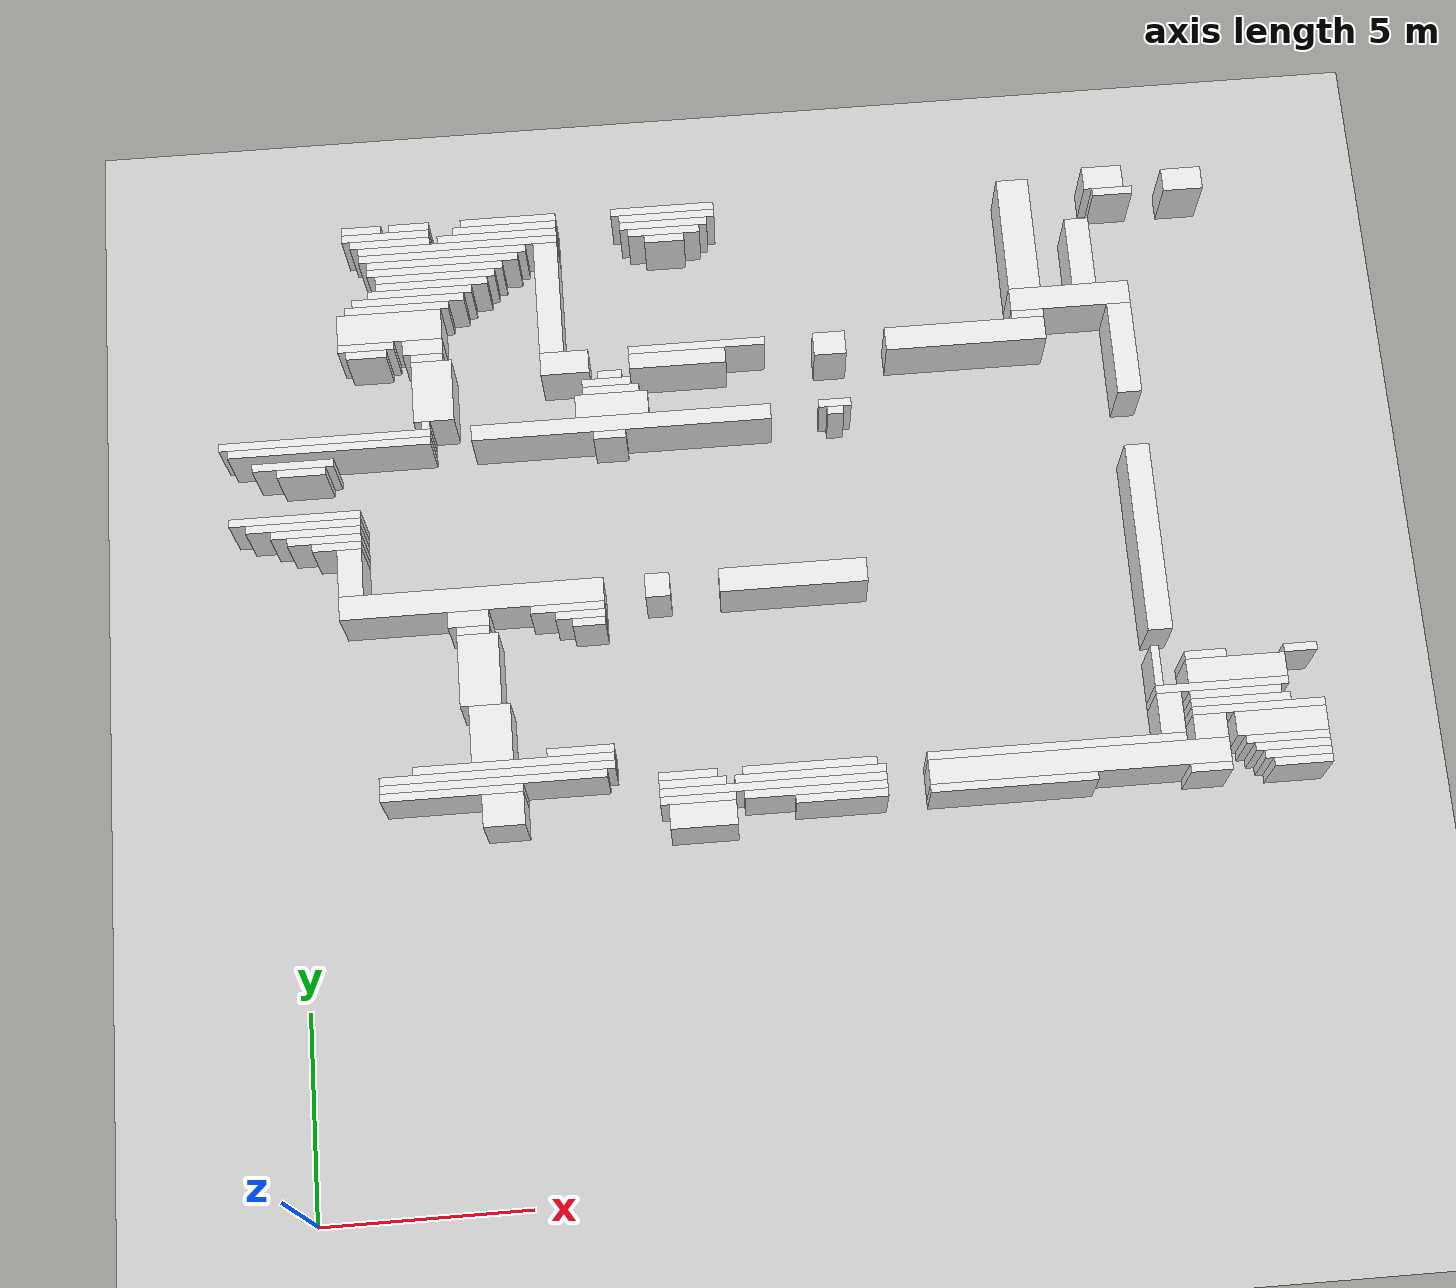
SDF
<sdf version="1.7">
 <world name="default">
  <model name="ground_plane">
   <static>1</static>
   <link name="link">
    <collision name="collision">
     <geometry><plane><normal>0 0 1</normal><size>120 120</size></plane></geometry>
    </collision>
    <visual name="visual">
     <geometry><plane><normal>0 0 1</normal><size>120 120</size></plane></geometry>
     <material>
      <script><uri>file://media/materials/scripts/gazebo.material</uri><name>Gazebo/Grey</name></script>
     </material>
    </visual>
   </link>
  </model>
  <model name="random_complex_02_model">
   <static>1</static>
   <link name="obs_1012">
    <pose>2.1000 24.5000 0.8000 0 0 0</pose>
    <collision name="obs_1012_col"><geometry><box><size>1.0000 0.2000 1.6000</size></box></geometry></collision>
    <visual name="obs_1012_vis">
     <geometry><box><size>1.0000 0.2000 1.6000</size></box></geometry>
     <material>
      <script><uri>file://media/materials/scripts/gazebo.material</uri><name>Gazebo/White</name></script>
     </material>
    </visual>
   </link>
   <link name="obs_1013">
    <pose>3.3000 24.5000 0.8000 0 0 0</pose>
    <collision name="obs_1013_col"><geometry><box><size>1.0000 0.2000 1.6000</size></box></geometry></collision>
    <visual name="obs_1013_vis">
     <geometry><box><size>1.0000 0.2000 1.6000</size></box></geometry>
     <material>
      <script><uri>file://media/materials/scripts/gazebo.material</uri><name>Gazebo/White</name></script>
     </material>
    </visual>
   </link>
   <link name="obs_1014">
    <pose>5.8000 24.5000 0.8000 0 0 0</pose>
    <collision name="obs_1014_col"><geometry><box><size>2.4000 0.2000 1.6000</size></box></geometry></collision>
    <visual name="obs_1014_vis">
     <geometry><box><size>2.4000 0.2000 1.6000</size></box></geometry>
     <material>
      <script><uri>file://media/materials/scripts/gazebo.material</uri><name>Gazebo/White</name></script>
     </material>
    </visual>
   </link>
   <link name="obs_1015">
    <pose>9.7000 24.5000 0.8000 0 0 0</pose>
    <collision name="obs_1015_col"><geometry><box><size>2.6000 0.2000 1.6000</size></box></geometry></collision>
    <visual name="obs_1015_vis">
     <geometry><box><size>2.6000 0.2000 1.6000</size></box></geometry>
     <material>
      <script><uri>file://media/materials/scripts/gazebo.material</uri><name>Gazebo/White</name></script>
     </material>
    </visual>
   </link>
   <link name="obs_1019">
    <pose>20.9000 24.5000 0.8000 0 0 0</pose>
    <collision name="obs_1019_col"><geometry><box><size>1.0000 0.6000 1.6000</size></box></geometry></collision>
    <visual name="obs_1019_vis">
     <geometry><box><size>1.0000 0.6000 1.6000</size></box></geometry>
     <material>
      <script><uri>file://media/materials/scripts/gazebo.material</uri><name>Gazebo/White</name></script>
     </material>
    </visual>
   </link>
   <link name="obs_1024">
    <pose>2.7000 24.3000 0.8000 0 0 0</pose>
    <collision name="obs_1024_col"><geometry><box><size>2.2000 0.2000 1.6000</size></box></geometry></collision>
    <visual name="obs_1024_vis">
     <geometry><box><size>2.2000 0.2000 1.6000</size></box></geometry>
     <material>
      <script><uri>file://media/materials/scripts/gazebo.material</uri><name>Gazebo/White</name></script>
     </material>
    </visual>
   </link>
   <link name="obs_1025">
    <pose>5.7000 24.3000 0.8000 0 0 0</pose>
    <collision name="obs_1025_col"><geometry><box><size>2.6000 0.2000 1.6000</size></box></geometry></collision>
    <visual name="obs_1025_vis">
     <geometry><box><size>2.6000 0.2000 1.6000</size></box></geometry>
     <material>
      <script><uri>file://media/materials/scripts/gazebo.material</uri><name>Gazebo/White</name></script>
     </material>
    </visual>
   </link>
   <link name="obs_1026">
    <pose>9.8000 24.3000 0.8000 0 0 0</pose>
    <collision name="obs_1026_col"><geometry><box><size>2.4000 0.2000 1.6000</size></box></geometry></collision>
    <visual name="obs_1026_vis">
     <geometry><box><size>2.4000 0.2000 1.6000</size></box></geometry>
     <material>
      <script><uri>file://media/materials/scripts/gazebo.material</uri><name>Gazebo/White</name></script>
     </material>
    </visual>
   </link>
   <link name="obs_1032">
    <pose>22.9000 24.3000 0.8000 0 0 0</pose>
    <collision name="obs_1032_col"><geometry><box><size>1.0000 0.6000 1.6000</size></box></geometry></collision>
    <visual name="obs_1032_vis">
     <geometry><box><size>1.0000 0.6000 1.6000</size></box></geometry>
     <material>
      <script><uri>file://media/materials/scripts/gazebo.material</uri><name>Gazebo/White</name></script>
     </material>
    </visual>
   </link>
   <link name="obs_1039">
    <pose>2.8000 24.1000 0.8000 0 0 0</pose>
    <collision name="obs_1039_col"><geometry><box><size>2.0000 0.2000 1.6000</size></box></geometry></collision>
    <visual name="obs_1039_vis">
     <geometry><box><size>2.0000 0.2000 1.6000</size></box></geometry>
     <material>
      <script><uri>file://media/materials/scripts/gazebo.material</uri><name>Gazebo/White</name></script>
     </material>
    </visual>
   </link>
   <link name="obs_1040">
    <pose>5.5000 24.1000 0.8000 0 0 0</pose>
    <collision name="obs_1040_col"><geometry><box><size>3.0000 0.2000 1.6000</size></box></geometry></collision>
    <visual name="obs_1040_vis">
     <geometry><box><size>3.0000 0.2000 1.6000</size></box></geometry>
     <material>
      <script><uri>file://media/materials/scripts/gazebo.material</uri><name>Gazebo/White</name></script>
     </material>
    </visual>
   </link>
   <link name="obs_1041">
    <pose>9.7000 24.1000 0.8000 0 0 0</pose>
    <collision name="obs_1041_col"><geometry><box><size>2.2000 0.2000 1.6000</size></box></geometry></collision>
    <visual name="obs_1041_vis">
     <geometry><box><size>2.2000 0.2000 1.6000</size></box></geometry>
     <material>
      <script><uri>file://media/materials/scripts/gazebo.material</uri><name>Gazebo/White</name></script>
     </material>
    </visual>
   </link>
   <link name="obs_1042">
    <pose>21.1000 24.1000 0.8000 0 0 0</pose>
    <collision name="obs_1042_col"><geometry><box><size>1.0000 0.2000 1.6000</size></box></geometry></collision>
    <visual name="obs_1042_vis">
     <geometry><box><size>1.0000 0.2000 1.6000</size></box></geometry>
     <material>
      <script><uri>file://media/materials/scripts/gazebo.material</uri><name>Gazebo/White</name></script>
     </material>
    </visual>
   </link>
   <link name="obs_1054">
    <pose>4.5000 23.9000 0.8000 0 0 0</pose>
    <collision name="obs_1054_col"><geometry><box><size>5.0000 0.2000 1.6000</size></box></geometry></collision>
    <visual name="obs_1054_vis">
     <geometry><box><size>5.0000 0.2000 1.6000</size></box></geometry>
     <material>
      <script><uri>file://media/materials/scripts/gazebo.material</uri><name>Gazebo/White</name></script>
     </material>
    </visual>
   </link>
   <link name="obs_1055">
    <pose>9.7000 23.9000 0.8000 0 0 0</pose>
    <collision name="obs_1055_col"><geometry><box><size>1.8000 0.2000 1.6000</size></box></geometry></collision>
    <visual name="obs_1055_vis">
     <geometry><box><size>1.8000 0.2000 1.6000</size></box></geometry>
     <material>
      <script><uri>file://media/materials/scripts/gazebo.material</uri><name>Gazebo/White</name></script>
     </material>
    </visual>
   </link>
   <link name="obs_1064">
    <pose>4.1000 23.7000 0.8000 0 0 0</pose>
    <collision name="obs_1064_col"><geometry><box><size>4.2000 0.2000 1.6000</size></box></geometry></collision>
    <visual name="obs_1064_vis">
     <geometry><box><size>4.2000 0.2000 1.6000</size></box></geometry>
     <material>
      <script><uri>file://media/materials/scripts/gazebo.material</uri><name>Gazebo/White</name></script>
     </material>
    </visual>
   </link>
   <link name="obs_1065">
    <pose>9.7000 23.7000 0.8000 0 0 0</pose>
    <collision name="obs_1065_col"><geometry><box><size>1.0000 0.2000 1.6000</size></box></geometry></collision>
    <visual name="obs_1065_vis">
     <geometry><box><size>1.0000 0.2000 1.6000</size></box></geometry>
     <material>
      <script><uri>file://media/materials/scripts/gazebo.material</uri><name>Gazebo/White</name></script>
     </material>
    </visual>
   </link>
   <link name="obs_1076">
    <pose>4.1000 23.5000 0.8000 0 0 0</pose>
    <collision name="obs_1076_col"><geometry><box><size>3.8000 0.2000 1.6000</size></box></geometry></collision>
    <visual name="obs_1076_vis">
     <geometry><box><size>3.8000 0.2000 1.6000</size></box></geometry>
     <material>
      <script><uri>file://media/materials/scripts/gazebo.material</uri><name>Gazebo/White</name></script>
     </material>
    </visual>
   </link>
   <link name="obs_1082">
    <pose>3.9000 23.3000 0.8000 0 0 0</pose>
    <collision name="obs_1082_col"><geometry><box><size>3.4000 0.2000 1.6000</size></box></geometry></collision>
    <visual name="obs_1082_vis">
     <geometry><box><size>3.4000 0.2000 1.6000</size></box></geometry>
     <material>
      <script><uri>file://media/materials/scripts/gazebo.material</uri><name>Gazebo/White</name></script>
     </material>
    </visual>
   </link>
   <link name="obs_1091">
    <pose>3.9000 23.1000 0.8000 0 0 0</pose>
    <collision name="obs_1091_col"><geometry><box><size>3.0000 0.2000 1.6000</size></box></geometry></collision>
    <visual name="obs_1091_vis">
     <geometry><box><size>3.0000 0.2000 1.6000</size></box></geometry>
     <material>
      <script><uri>file://media/materials/scripts/gazebo.material</uri><name>Gazebo/White</name></script>
     </material>
    </visual>
   </link>
   <link name="obs_1101">
    <pose>3.8000 22.9000 0.8000 0 0 0</pose>
    <collision name="obs_1101_col"><geometry><box><size>2.8000 0.2000 1.6000</size></box></geometry></collision>
    <visual name="obs_1101_vis">
     <geometry><box><size>2.8000 0.2000 1.6000</size></box></geometry>
     <material>
      <script><uri>file://media/materials/scripts/gazebo.material</uri><name>Gazebo/White</name></script>
     </material>
    </visual>
   </link>
   <link name="obs_1111">
    <pose>3.5000 22.7000 0.8000 0 0 0</pose>
    <collision name="obs_1111_col"><geometry><box><size>2.6000 0.2000 1.6000</size></box></geometry></collision>
    <visual name="obs_1111_vis">
     <geometry><box><size>2.6000 0.2000 1.6000</size></box></geometry>
     <material>
      <script><uri>file://media/materials/scripts/gazebo.material</uri><name>Gazebo/White</name></script>
     </material>
    </visual>
   </link>
   <link name="obs_1120">
    <pose>3.2000 22.5000 0.8000 0 0 0</pose>
    <collision name="obs_1120_col"><geometry><box><size>2.8000 0.2000 1.6000</size></box></geometry></collision>
    <visual name="obs_1120_vis">
     <geometry><box><size>2.8000 0.2000 1.6000</size></box></geometry>
     <material>
      <script><uri>file://media/materials/scripts/gazebo.material</uri><name>Gazebo/White</name></script>
     </material>
    </visual>
   </link>
   <link name="obs_1128">
    <pose>2.9000 22.3000 0.8000 0 0 0</pose>
    <collision name="obs_1128_col"><geometry><box><size>2.6000 0.2000 1.6000</size></box></geometry></collision>
    <visual name="obs_1128_vis">
     <geometry><box><size>2.6000 0.2000 1.6000</size></box></geometry>
     <material>
      <script><uri>file://media/materials/scripts/gazebo.material</uri><name>Gazebo/White</name></script>
     </material>
    </visual>
   </link>
   <link name="obs_1143">
    <pose>18.6000 23.1000 0.8000 0 0 0</pose>
    <collision name="obs_1143_col"><geometry><box><size>0.8000 3.0000 1.6000</size></box></geometry></collision>
    <visual name="obs_1143_vis">
     <geometry><box><size>0.8000 3.0000 1.6000</size></box></geometry>
     <material>
      <script><uri>file://media/materials/scripts/gazebo.material</uri><name>Gazebo/White</name></script>
     </material>
    </visual>
   </link>
   <link name="obs_1144">
    <pose>20.1000 22.5000 0.8000 0 0 0</pose>
    <collision name="obs_1144_col"><geometry><box><size>0.6000 1.8000 1.6000</size></box></geometry></collision>
    <visual name="obs_1144_vis">
     <geometry><box><size>0.6000 1.8000 1.6000</size></box></geometry>
     <material>
      <script><uri>file://media/materials/scripts/gazebo.material</uri><name>Gazebo/White</name></script>
     </material>
    </visual>
   </link>
   <link name="obs_1155">
    <pose>2.7000 21.8000 0.8000 0 0 0</pose>
    <collision name="obs_1155_col"><geometry><box><size>2.6000 0.8000 1.6000</size></box></geometry></collision>
    <visual name="obs_1155_vis">
     <geometry><box><size>2.6000 0.8000 1.6000</size></box></geometry>
     <material>
      <script><uri>file://media/materials/scripts/gazebo.material</uri><name>Gazebo/White</name></script>
     </material>
    </visual>
   </link>
   <link name="obs_1168">
    <pose>2.1000 21.3000 0.8000 0 0 0</pose>
    <collision name="obs_1168_col"><geometry><box><size>1.4000 0.2000 1.6000</size></box></geometry></collision>
    <visual name="obs_1168_vis">
     <geometry><box><size>1.4000 0.2000 1.6000</size></box></geometry>
     <material>
      <script><uri>file://media/materials/scripts/gazebo.material</uri><name>Gazebo/White</name></script>
     </material>
    </visual>
   </link>
   <link name="obs_1170">
    <pose>19.7000 21.3000 0.8000 0 0 0</pose>
    <collision name="obs_1170_col"><geometry><box><size>3.0000 0.6000 1.6000</size></box></geometry></collision>
    <visual name="obs_1170_vis">
     <geometry><box><size>3.0000 0.6000 1.6000</size></box></geometry>
     <material>
      <script><uri>file://media/materials/scripts/gazebo.material</uri><name>Gazebo/White</name></script>
     </material>
    </visual>
   </link>
   <link name="obs_1174">
    <pose>3.5000 21.2000 0.8000 0 0 0</pose>
    <collision name="obs_1174_col"><geometry><box><size>1.0000 0.4000 1.6000</size></box></geometry></collision>
    <visual name="obs_1174_vis">
     <geometry><box><size>1.0000 0.4000 1.6000</size></box></geometry>
     <material>
      <script><uri>file://media/materials/scripts/gazebo.material</uri><name>Gazebo/White</name></script>
     </material>
    </visual>
   </link>
   <link name="obs_1179">
    <pose>2.1000 21.1000 0.8000 0 0 0</pose>
    <collision name="obs_1179_col"><geometry><box><size>1.0000 0.2000 1.6000</size></box></geometry></collision>
    <visual name="obs_1179_vis">
     <geometry><box><size>1.0000 0.2000 1.6000</size></box></geometry>
     <material>
      <script><uri>file://media/materials/scripts/gazebo.material</uri><name>Gazebo/White</name></script>
     </material>
    </visual>
   </link>
   <link name="obs_1181">
    <pose>6.7000 22.3000 0.8000 0 0 0</pose>
    <collision name="obs_1181_col"><geometry><box><size>0.6000 3.0000 1.6000</size></box></geometry></collision>
    <visual name="obs_1181_vis">
     <geometry><box><size>0.6000 3.0000 1.6000</size></box></geometry>
     <material>
      <script><uri>file://media/materials/scripts/gazebo.material</uri><name>Gazebo/White</name></script>
     </material>
    </visual>
   </link>
   <link name="obs_1188">
    <pose>3.6000 20.9000 0.8000 0 0 0</pose>
    <collision name="obs_1188_col"><geometry><box><size>0.8000 0.2000 1.6000</size></box></geometry></collision>
    <visual name="obs_1188_vis">
     <geometry><box><size>0.8000 0.2000 1.6000</size></box></geometry>
     <material>
      <script><uri>file://media/materials/scripts/gazebo.material</uri><name>Gazebo/White</name></script>
     </material>
    </visual>
   </link>
   <link name="obs_1189">
    <pose>18.6000 20.9000 0.8000 0 0 0</pose>
    <collision name="obs_1189_col"><geometry><box><size>0.8000 0.2000 1.6000</size></box></geometry></collision>
    <visual name="obs_1189_vis">
     <geometry><box><size>0.8000 0.2000 1.6000</size></box></geometry>
     <material>
      <script><uri>file://media/materials/scripts/gazebo.material</uri><name>Gazebo/White</name></script>
     </material>
    </visual>
   </link>
   <link name="obs_1198">
    <pose>10.3000 20.7000 0.8000 0 0 0</pose>
    <collision name="obs_1198_col"><geometry><box><size>3.4000 0.2000 1.6000</size></box></geometry></collision>
    <visual name="obs_1198_vis">
     <geometry><box><size>3.4000 0.2000 1.6000</size></box></geometry>
     <material>
      <script><uri>file://media/materials/scripts/gazebo.material</uri><name>Gazebo/White</name></script>
     </material>
    </visual>
   </link>
   <link name="obs_1208">
    <pose>7.0000 20.5000 0.8000 0 0 0</pose>
    <collision name="obs_1208_col"><geometry><box><size>1.2000 0.6000 1.6000</size></box></geometry></collision>
    <visual name="obs_1208_vis">
     <geometry><box><size>1.2000 0.6000 1.6000</size></box></geometry>
     <material>
      <script><uri>file://media/materials/scripts/gazebo.material</uri><name>Gazebo/White</name></script>
     </material>
    </visual>
   </link>
   <link name="obs_1209">
    <pose>13.6000 20.5000 0.8000 0 0 0</pose>
    <collision name="obs_1209_col"><geometry><box><size>0.8000 0.6000 1.6000</size></box></geometry></collision>
    <visual name="obs_1209_vis">
     <geometry><box><size>0.8000 0.6000 1.6000</size></box></geometry>
     <material>
      <script><uri>file://media/materials/scripts/gazebo.material</uri><name>Gazebo/White</name></script>
     </material>
    </visual>
   </link>
   <link name="obs_1210">
    <pose>17.0000 20.5000 0.8000 0 0 0</pose>
    <collision name="obs_1210_col"><geometry><box><size>4.0000 0.6000 1.6000</size></box></geometry></collision>
    <visual name="obs_1210_vis">
     <geometry><box><size>4.0000 0.6000 1.6000</size></box></geometry>
     <material>
      <script><uri>file://media/materials/scripts/gazebo.material</uri><name>Gazebo/White</name></script>
     </material>
    </visual>
   </link>
   <link name="obs_1212">
    <pose>9.8000 20.4000 0.8000 0 0 0</pose>
    <collision name="obs_1212_col"><geometry><box><size>2.4000 0.4000 1.6000</size></box></geometry></collision>
    <visual name="obs_1212_vis">
     <geometry><box><size>2.4000 0.4000 1.6000</size></box></geometry>
     <material>
      <script><uri>file://media/materials/scripts/gazebo.material</uri><name>Gazebo/White</name></script>
     </material>
    </visual>
   </link>
   <link name="obs_1224">
    <pose>8.1000 20.1000 0.8000 0 0 0</pose>
    <collision name="obs_1224_col"><geometry><box><size>0.6000 0.2000 1.6000</size></box></geometry></collision>
    <visual name="obs_1224_vis">
     <geometry><box><size>0.6000 0.2000 1.6000</size></box></geometry>
     <material>
      <script><uri>file://media/materials/scripts/gazebo.material</uri><name>Gazebo/White</name></script>
     </material>
    </visual>
   </link>
   <link name="obs_1231">
    <pose>8.0000 19.9000 0.8000 0 0 0</pose>
    <collision name="obs_1231_col"><geometry><box><size>1.2000 0.2000 1.6000</size></box></geometry></collision>
    <visual name="obs_1231_vis">
     <geometry><box><size>1.2000 0.2000 1.6000</size></box></geometry>
     <material>
      <script><uri>file://media/materials/scripts/gazebo.material</uri><name>Gazebo/White</name></script>
     </material>
    </visual>
   </link>
   <link name="obs_1236">
    <pose>8.1000 19.7000 0.8000 0 0 0</pose>
    <collision name="obs_1236_col"><geometry><box><size>1.4000 0.2000 1.6000</size></box></geometry></collision>
    <visual name="obs_1236_vis">
     <geometry><box><size>1.4000 0.2000 1.6000</size></box></geometry>
     <material>
      <script><uri>file://media/materials/scripts/gazebo.material</uri><name>Gazebo/White</name></script>
     </material>
    </visual>
   </link>
   <link name="obs_1242">
    <pose>3.7000 20.0000 0.8000 0 0 0</pose>
    <collision name="obs_1242_col"><geometry><box><size>1.0000 1.6000 1.6000</size></box></geometry></collision>
    <visual name="obs_1242_vis">
     <geometry><box><size>1.0000 1.6000 1.6000</size></box></geometry>
     <material>
      <script><uri>file://media/materials/scripts/gazebo.material</uri><name>Gazebo/White</name></script>
     </material>
    </visual>
   </link>
   <link name="obs_1253">
    <pose>8.1000 19.3000 0.8000 0 0 0</pose>
    <collision name="obs_1253_col"><geometry><box><size>1.8000 0.6000 1.6000</size></box></geometry></collision>
    <visual name="obs_1253_vis">
     <geometry><box><size>1.8000 0.6000 1.6000</size></box></geometry>
     <material>
      <script><uri>file://media/materials/scripts/gazebo.material</uri><name>Gazebo/White</name></script>
     </material>
    </visual>
   </link>
   <link name="obs_1260">
    <pose>3.5000 19.1000 0.8000 0 0 0</pose>
    <collision name="obs_1260_col"><geometry><box><size>0.2000 0.2000 1.6000</size></box></geometry></collision>
    <visual name="obs_1260_vis">
     <geometry><box><size>0.2000 0.2000 1.6000</size></box></geometry>
     <material>
      <script><uri>file://media/materials/scripts/gazebo.material</uri><name>Gazebo/White</name></script>
     </material>
    </visual>
   </link>
   <link name="obs_1267">
    <pose>1.0000 18.9000 0.8000 0 0 0</pose>
    <collision name="obs_1267_col"><geometry><box><size>5.2000 0.2000 1.6000</size></box></geometry></collision>
    <visual name="obs_1267_vis">
     <geometry><box><size>5.2000 0.2000 1.6000</size></box></geometry>
     <material>
      <script><uri>file://media/materials/scripts/gazebo.material</uri><name>Gazebo/White</name></script>
     </material>
    </visual>
   </link>
   <link name="obs_1268">
    <pose>13.6000 18.9000 0.8000 0 0 0</pose>
    <collision name="obs_1268_col"><geometry><box><size>0.8000 0.2000 1.6000</size></box></geometry></collision>
    <visual name="obs_1268_vis">
     <geometry><box><size>0.8000 0.2000 1.6000</size></box></geometry>
     <material>
      <script><uri>file://media/materials/scripts/gazebo.material</uri><name>Gazebo/White</name></script>
     </material>
    </visual>
   </link>
   <link name="obs_1271">
    <pose>20.9000 19.8000 0.8000 0 0 0</pose>
    <collision name="obs_1271_col"><geometry><box><size>0.6000 2.4000 1.6000</size></box></geometry></collision>
    <visual name="obs_1271_vis">
     <geometry><box><size>0.6000 2.4000 1.6000</size></box></geometry>
     <material>
      <script><uri>file://media/materials/scripts/gazebo.material</uri><name>Gazebo/White</name></script>
     </material>
    </visual>
   </link>
   <link name="obs_1275">
    <pose>8.3000 18.8000 0.8000 0 0 0</pose>
    <collision name="obs_1275_col"><geometry><box><size>7.4000 0.4000 1.6000</size></box></geometry></collision>
    <visual name="obs_1275_vis">
     <geometry><box><size>7.4000 0.4000 1.6000</size></box></geometry>
     <material>
      <script><uri>file://media/materials/scripts/gazebo.material</uri><name>Gazebo/White</name></script>
     </material>
    </visual>
   </link>
   <link name="obs_1282">
    <pose>1.1000 18.7000 0.8000 0 0 0</pose>
    <collision name="obs_1282_col"><geometry><box><size>5.0000 0.2000 1.6000</size></box></geometry></collision>
    <visual name="obs_1282_vis">
     <geometry><box><size>5.0000 0.2000 1.6000</size></box></geometry>
     <material>
      <script><uri>file://media/materials/scripts/gazebo.material</uri><name>Gazebo/White</name></script>
     </material>
    </visual>
   </link>
   <link name="obs_1283">
    <pose>13.6000 18.7000 0.8000 0 0 0</pose>
    <collision name="obs_1283_col"><geometry><box><size>0.4000 0.2000 1.6000</size></box></geometry></collision>
    <visual name="obs_1283_vis">
     <geometry><box><size>0.4000 0.2000 1.6000</size></box></geometry>
     <material>
      <script><uri>file://media/materials/scripts/gazebo.material</uri><name>Gazebo/White</name></script>
     </material>
    </visual>
   </link>
   <link name="obs_1290">
    <pose>8.0000 18.5000 0.8000 0 0 0</pose>
    <collision name="obs_1290_col"><geometry><box><size>0.8000 0.2000 1.6000</size></box></geometry></collision>
    <visual name="obs_1290_vis">
     <geometry><box><size>0.8000 0.2000 1.6000</size></box></geometry>
     <material>
      <script><uri>file://media/materials/scripts/gazebo.material</uri><name>Gazebo/White</name></script>
     </material>
    </visual>
   </link>
   <link name="obs_1295">
    <pose>0.2000 18.3000 0.8000 0 0 0</pose>
    <collision name="obs_1295_col"><geometry><box><size>2.0000 0.2000 1.6000</size></box></geometry></collision>
    <visual name="obs_1295_vis">
     <geometry><box><size>2.0000 0.2000 1.6000</size></box></geometry>
     <material>
      <script><uri>file://media/materials/scripts/gazebo.material</uri><name>Gazebo/White</name></script>
     </material>
    </visual>
   </link>
   <link name="obs_1300">
    <pose>0.4000 18.1000 0.8000 0 0 0</pose>
    <collision name="obs_1300_col"><geometry><box><size>1.2000 0.2000 1.6000</size></box></geometry></collision>
    <visual name="obs_1300_vis">
     <geometry><box><size>1.2000 0.2000 1.6000</size></box></geometry>
     <material>
      <script><uri>file://media/materials/scripts/gazebo.material</uri><name>Gazebo/White</name></script>
     </material>
    </visual>
   </link>
   <link name="obs_1323">
    <pose>0.2000 16.9000 0.8000 0 0 0</pose>
    <collision name="obs_1323_col"><geometry><box><size>3.2000 0.2000 1.6000</size></box></geometry></collision>
    <visual name="obs_1323_vis">
     <geometry><box><size>3.2000 0.2000 1.6000</size></box></geometry>
     <material>
      <script><uri>file://media/materials/scripts/gazebo.material</uri><name>Gazebo/White</name></script>
     </material>
    </visual>
   </link>
   <link name="obs_1330">
    <pose>0.4000 16.7000 0.8000 0 0 0</pose>
    <collision name="obs_1330_col"><geometry><box><size>2.8000 0.2000 1.6000</size></box></geometry></collision>
    <visual name="obs_1330_vis">
     <geometry><box><size>2.8000 0.2000 1.6000</size></box></geometry>
     <material>
      <script><uri>file://media/materials/scripts/gazebo.material</uri><name>Gazebo/White</name></script>
     </material>
    </visual>
   </link>
   <link name="obs_1337">
    <pose>0.7000 16.5000 0.8000 0 0 0</pose>
    <collision name="obs_1337_col"><geometry><box><size>2.2000 0.2000 1.6000</size></box></geometry></collision>
    <visual name="obs_1337_vis">
     <geometry><box><size>2.2000 0.2000 1.6000</size></box></geometry>
     <material>
      <script><uri>file://media/materials/scripts/gazebo.material</uri><name>Gazebo/White</name></script>
     </material>
    </visual>
   </link>
   <link name="obs_1343">
    <pose>0.9000 16.3000 0.8000 0 0 0</pose>
    <collision name="obs_1343_col"><geometry><box><size>1.8000 0.2000 1.6000</size></box></geometry></collision>
    <visual name="obs_1343_vis">
     <geometry><box><size>1.8000 0.2000 1.6000</size></box></geometry>
     <material>
      <script><uri>file://media/materials/scripts/gazebo.material</uri><name>Gazebo/White</name></script>
     </material>
    </visual>
   </link>
   <link name="obs_1349">
    <pose>1.2000 16.1000 0.8000 0 0 0</pose>
    <collision name="obs_1349_col"><geometry><box><size>1.2000 0.2000 1.6000</size></box></geometry></collision>
    <visual name="obs_1349_vis">
     <geometry><box><size>1.2000 0.2000 1.6000</size></box></geometry>
     <material>
      <script><uri>file://media/materials/scripts/gazebo.material</uri><name>Gazebo/White</name></script>
     </material>
    </visual>
   </link>
   <link name="obs_1379">
    <pose>1.5000 15.4000 0.8000 0 0 0</pose>
    <collision name="obs_1379_col"><geometry><box><size>0.6000 1.2000 1.6000</size></box></geometry></collision>
    <visual name="obs_1379_vis">
     <geometry><box><size>0.6000 1.2000 1.6000</size></box></geometry>
     <material>
      <script><uri>file://media/materials/scripts/gazebo.material</uri><name>Gazebo/White</name></script>
     </material>
    </visual>
   </link>
   <link name="obs_1398">
    <pose>4.4000 14.5000 0.8000 0 0 0</pose>
    <collision name="obs_1398_col"><geometry><box><size>6.4000 0.6000 1.6000</size></box></geometry></collision>
    <visual name="obs_1398_vis">
     <geometry><box><size>6.4000 0.6000 1.6000</size></box></geometry>
     <material>
      <script><uri>file://media/materials/scripts/gazebo.material</uri><name>Gazebo/White</name></script>
     </material>
    </visual>
   </link>
   <link name="obs_1399">
    <pose>8.9000 14.5000 0.8000 0 0 0</pose>
    <collision name="obs_1399_col"><geometry><box><size>0.6000 0.6000 1.6000</size></box></geometry></collision>
    <visual name="obs_1399_vis">
     <geometry><box><size>0.6000 0.6000 1.6000</size></box></geometry>
     <material>
      <script><uri>file://media/materials/scripts/gazebo.material</uri><name>Gazebo/White</name></script>
     </material>
    </visual>
   </link>
   <link name="obs_1400">
    <pose>12.2000 14.5000 0.8000 0 0 0</pose>
    <collision name="obs_1400_col"><geometry><box><size>3.6000 0.6000 1.6000</size></box></geometry></collision>
    <visual name="obs_1400_vis">
     <geometry><box><size>3.6000 0.6000 1.6000</size></box></geometry>
     <material>
      <script><uri>file://media/materials/scripts/gazebo.material</uri><name>Gazebo/White</name></script>
     </material>
    </visual>
   </link>
   <link name="obs_1410">
    <pose>6.7000 14.1000 0.8000 0 0 0</pose>
    <collision name="obs_1410_col"><geometry><box><size>1.8000 0.2000 1.6000</size></box></geometry></collision>
    <visual name="obs_1410_vis">
     <geometry><box><size>1.8000 0.2000 1.6000</size></box></geometry>
     <material>
      <script><uri>file://media/materials/scripts/gazebo.material</uri><name>Gazebo/White</name></script>
     </material>
    </visual>
   </link>
   <link name="obs_1416">
    <pose>4.3000 14.0000 0.8000 0 0 0</pose>
    <collision name="obs_1416_col"><geometry><box><size>1.0000 0.4000 1.6000</size></box></geometry></collision>
    <visual name="obs_1416_vis">
     <geometry><box><size>1.0000 0.4000 1.6000</size></box></geometry>
     <material>
      <script><uri>file://media/materials/scripts/gazebo.material</uri><name>Gazebo/White</name></script>
     </material>
    </visual>
   </link>
   <link name="obs_1419">
    <pose>7.0000 13.9000 0.8000 0 0 0</pose>
    <collision name="obs_1419_col"><geometry><box><size>1.2000 0.2000 1.6000</size></box></geometry></collision>
    <visual name="obs_1419_vis">
     <geometry><box><size>1.2000 0.2000 1.6000</size></box></geometry>
     <material>
      <script><uri>file://media/materials/scripts/gazebo.material</uri><name>Gazebo/White</name></script>
     </material>
    </visual>
   </link>
   <link name="obs_1425">
    <pose>4.4000 13.7000 0.8000 0 0 0</pose>
    <collision name="obs_1425_col"><geometry><box><size>0.8000 0.2000 1.6000</size></box></geometry></collision>
    <visual name="obs_1425_vis">
     <geometry><box><size>0.8000 0.2000 1.6000</size></box></geometry>
     <material>
      <script><uri>file://media/materials/scripts/gazebo.material</uri><name>Gazebo/White</name></script>
     </material>
    </visual>
   </link>
   <link name="obs_1426">
    <pose>7.2000 13.7000 0.8000 0 0 0</pose>
    <collision name="obs_1426_col"><geometry><box><size>0.8000 0.2000 1.6000</size></box></geometry></collision>
    <visual name="obs_1426_vis">
     <geometry><box><size>0.8000 0.2000 1.6000</size></box></geometry>
     <material>
      <script><uri>file://media/materials/scripts/gazebo.material</uri><name>Gazebo/White</name></script>
     </material>
    </visual>
   </link>
   <link name="obs_1452">
    <pose>20.9000 14.8000 0.8000 0 0 0</pose>
    <collision name="obs_1452_col"><geometry><box><size>0.6000 4.8000 1.6000</size></box></geometry></collision>
    <visual name="obs_1452_vis">
     <geometry><box><size>0.6000 4.8000 1.6000</size></box></geometry>
     <material>
      <script><uri>file://media/materials/scripts/gazebo.material</uri><name>Gazebo/White</name></script>
     </material>
    </visual>
   </link>
   <link name="obs_1476">
    <pose>4.5000 12.7000 0.8000 0 0 0</pose>
    <collision name="obs_1476_col"><geometry><box><size>1.0000 1.8000 1.6000</size></box></geometry></collision>
    <visual name="obs_1476_vis">
     <geometry><box><size>1.0000 1.8000 1.6000</size></box></geometry>
     <material>
      <script><uri>file://media/materials/scripts/gazebo.material</uri><name>Gazebo/White</name></script>
     </material>
    </visual>
   </link>
   <link name="obs_1489">
    <pose>21.9000 11.7000 0.8000 0 0 0</pose>
    <collision name="obs_1489_col"><geometry><box><size>1.0000 0.2000 1.6000</size></box></geometry></collision>
    <visual name="obs_1489_vis">
     <geometry><box><size>1.0000 0.2000 1.6000</size></box></geometry>
     <material>
      <script><uri>file://media/materials/scripts/gazebo.material</uri><name>Gazebo/White</name></script>
     </material>
    </visual>
   </link>
   <link name="obs_1490">
    <pose>24.2000 11.7000 0.8000 0 0 0</pose>
    <collision name="obs_1490_col"><geometry><box><size>0.8000 0.2000 1.6000</size></box></geometry></collision>
    <visual name="obs_1490_vis">
     <geometry><box><size>0.8000 0.2000 1.6000</size></box></geometry>
     <material>
      <script><uri>file://media/materials/scripts/gazebo.material</uri><name>Gazebo/White</name></script>
     </material>
    </visual>
   </link>
   <link name="obs_1500">
    <pose>20.7000 11.5000 0.8000 0 0 0</pose>
    <collision name="obs_1500_col"><geometry><box><size>0.2000 1.0000 1.6000</size></box></geometry></collision>
    <visual name="obs_1500_vis">
     <geometry><box><size>0.2000 1.0000 1.6000</size></box></geometry>
     <material>
      <script><uri>file://media/materials/scripts/gazebo.material</uri><name>Gazebo/White</name></script>
     </material>
    </visual>
   </link>
   <link name="obs_1501">
    <pose>22.6000 11.3000 0.8000 0 0 0</pose>
    <collision name="obs_1501_col"><geometry><box><size>2.4000 0.6000 1.6000</size></box></geometry></collision>
    <visual name="obs_1501_vis">
     <geometry><box><size>2.4000 0.6000 1.6000</size></box></geometry>
     <material>
      <script><uri>file://media/materials/scripts/gazebo.material</uri><name>Gazebo/White</name></script>
     </material>
    </visual>
   </link>
   <link name="obs_1509">
    <pose>22.2000 10.9000 0.8000 0 0 0</pose>
    <collision name="obs_1509_col"><geometry><box><size>3.2000 0.2000 1.6000</size></box></geometry></collision>
    <visual name="obs_1509_vis">
     <geometry><box><size>3.2000 0.2000 1.6000</size></box></geometry>
     <material>
      <script><uri>file://media/materials/scripts/gazebo.material</uri><name>Gazebo/White</name></script>
     </material>
    </visual>
   </link>
   <link name="obs_1513">
    <pose>22.5000 10.7000 0.8000 0 0 0</pose>
    <collision name="obs_1513_col"><geometry><box><size>2.2000 0.2000 1.6000</size></box></geometry></collision>
    <visual name="obs_1513_vis">
     <geometry><box><size>2.2000 0.2000 1.6000</size></box></geometry>
     <material>
      <script><uri>file://media/materials/scripts/gazebo.material</uri><name>Gazebo/White</name></script>
     </material>
    </visual>
   </link>
   <link name="obs_1515">
    <pose>4.7000 11.1000 0.8000 0 0 0</pose>
    <collision name="obs_1515_col"><geometry><box><size>1.0000 1.4000 1.6000</size></box></geometry></collision>
    <visual name="obs_1515_vis">
     <geometry><box><size>1.0000 1.4000 1.6000</size></box></geometry>
     <material>
      <script><uri>file://media/materials/scripts/gazebo.material</uri><name>Gazebo/White</name></script>
     </material>
    </visual>
   </link>
   <link name="obs_1519">
    <pose>6.8000 10.5000 0.8000 0 0 0</pose>
    <collision name="obs_1519_col"><geometry><box><size>1.6000 0.2000 1.6000</size></box></geometry></collision>
    <visual name="obs_1519_vis">
     <geometry><box><size>1.6000 0.2000 1.6000</size></box></geometry>
     <material>
      <script><uri>file://media/materials/scripts/gazebo.material</uri><name>Gazebo/White</name></script>
     </material>
    </visual>
   </link>
   <link name="obs_1520">
    <pose>22.6000 10.5000 0.8000 0 0 0</pose>
    <collision name="obs_1520_col"><geometry><box><size>2.4000 0.2000 1.6000</size></box></geometry></collision>
    <visual name="obs_1520_vis">
     <geometry><box><size>2.4000 0.2000 1.6000</size></box></geometry>
     <material>
      <script><uri>file://media/materials/scripts/gazebo.material</uri><name>Gazebo/White</name></script>
     </material>
    </visual>
   </link>
   <link name="obs_1527">
    <pose>5.2000 10.3000 0.8000 0 0 0</pose>
    <collision name="obs_1527_col"><geometry><box><size>4.8000 0.2000 1.6000</size></box></geometry></collision>
    <visual name="obs_1527_vis">
     <geometry><box><size>4.8000 0.2000 1.6000</size></box></geometry>
     <material>
      <script><uri>file://media/materials/scripts/gazebo.material</uri><name>Gazebo/White</name></script>
     </material>
    </visual>
   </link>
   <link name="obs_1528">
    <pose>23.0000 10.3000 0.8000 0 0 0</pose>
    <collision name="obs_1528_col"><geometry><box><size>3.2000 0.2000 1.6000</size></box></geometry></collision>
    <visual name="obs_1528_vis">
     <geometry><box><size>3.2000 0.2000 1.6000</size></box></geometry>
     <material>
      <script><uri>file://media/materials/scripts/gazebo.material</uri><name>Gazebo/White</name></script>
     </material>
    </visual>
   </link>
   <link name="obs_1535">
    <pose>4.8000 10.1000 0.8000 0 0 0</pose>
    <collision name="obs_1535_col"><geometry><box><size>5.6000 0.2000 1.6000</size></box></geometry></collision>
    <visual name="obs_1535_vis">
     <geometry><box><size>5.6000 0.2000 1.6000</size></box></geometry>
     <material>
      <script><uri>file://media/materials/scripts/gazebo.material</uri><name>Gazebo/White</name></script>
     </material>
    </visual>
   </link>
   <link name="obs_1539">
    <pose>20.9000 10.3000 0.8000 0 0 0</pose>
    <collision name="obs_1539_col"><geometry><box><size>0.6000 1.0000 1.6000</size></box></geometry></collision>
    <visual name="obs_1539_vis">
     <geometry><box><size>0.6000 1.0000 1.6000</size></box></geometry>
     <material>
      <script><uri>file://media/materials/scripts/gazebo.material</uri><name>Gazebo/White</name></script>
     </material>
    </visual>
   </link>
   <link name="obs_1544">
    <pose>4.7000 9.9000 0.8000 0 0 0</pose>
    <collision name="obs_1544_col"><geometry><box><size>5.4000 0.2000 1.6000</size></box></geometry></collision>
    <visual name="obs_1544_vis">
     <geometry><box><size>5.4000 0.2000 1.6000</size></box></geometry>
     <material>
      <script><uri>file://media/materials/scripts/gazebo.material</uri><name>Gazebo/White</name></script>
     </material>
    </visual>
   </link>
   <link name="obs_1548">
    <pose>21.8000 9.9000 0.8000 0 0 0</pose>
    <collision name="obs_1548_col"><geometry><box><size>0.8000 0.6000 1.6000</size></box></geometry></collision>
    <visual name="obs_1548_vis">
     <geometry><box><size>0.8000 0.6000 1.6000</size></box></geometry>
     <material>
      <script><uri>file://media/materials/scripts/gazebo.material</uri><name>Gazebo/White</name></script>
     </material>
    </visual>
   </link>
   <link name="obs_1549">
    <pose>23.5000 9.9000 0.8000 0 0 0</pose>
    <collision name="obs_1549_col"><geometry><box><size>2.2000 0.6000 1.6000</size></box></geometry></collision>
    <visual name="obs_1549_vis">
     <geometry><box><size>2.2000 0.6000 1.6000</size></box></geometry>
     <material>
      <script><uri>file://media/materials/scripts/gazebo.material</uri><name>Gazebo/White</name></script>
     </material>
    </visual>
   </link>
   <link name="obs_1554">
    <pose>3.7000 9.7000 0.8000 0 0 0</pose>
    <collision name="obs_1554_col"><geometry><box><size>3.4000 0.2000 1.6000</size></box></geometry></collision>
    <visual name="obs_1554_vis">
     <geometry><box><size>3.4000 0.2000 1.6000</size></box></geometry>
     <material>
      <script><uri>file://media/materials/scripts/gazebo.material</uri><name>Gazebo/White</name></script>
     </material>
    </visual>
   </link>
   <link name="obs_1555">
    <pose>9.3000 9.7000 0.8000 0 0 0</pose>
    <collision name="obs_1555_col"><geometry><box><size>1.4000 0.2000 1.6000</size></box></geometry></collision>
    <visual name="obs_1555_vis">
     <geometry><box><size>1.4000 0.2000 1.6000</size></box></geometry>
     <material>
      <script><uri>file://media/materials/scripts/gazebo.material</uri><name>Gazebo/White</name></script>
     </material>
    </visual>
   </link>
   <link name="obs_1556">
    <pose>12.2000 9.7000 0.8000 0 0 0</pose>
    <collision name="obs_1556_col"><geometry><box><size>3.2000 0.2000 1.6000</size></box></geometry></collision>
    <visual name="obs_1556_vis">
     <geometry><box><size>3.2000 0.2000 1.6000</size></box></geometry>
     <material>
      <script><uri>file://media/materials/scripts/gazebo.material</uri><name>Gazebo/White</name></script>
     </material>
    </visual>
   </link>
   <link name="obs_1557">
    <pose>18.1000 9.7000 0.8000 0 0 0</pose>
    <collision name="obs_1557_col"><geometry><box><size>6.2000 0.2000 1.6000</size></box></geometry></collision>
    <visual name="obs_1557_vis">
     <geometry><box><size>6.2000 0.2000 1.6000</size></box></geometry>
     <material>
      <script><uri>file://media/materials/scripts/gazebo.material</uri><name>Gazebo/White</name></script>
     </material>
    </visual>
   </link>
   <link name="obs_1563">
    <pose>9.4000 9.5000 0.8000 0 0 0</pose>
    <collision name="obs_1563_col"><geometry><box><size>1.6000 0.2000 1.6000</size></box></geometry></collision>
    <visual name="obs_1563_vis">
     <geometry><box><size>1.6000 0.2000 1.6000</size></box></geometry>
     <material>
      <script><uri>file://media/materials/scripts/gazebo.material</uri><name>Gazebo/White</name></script>
     </material>
    </visual>
   </link>
   <link name="obs_1564">
    <pose>12.2000 9.5000 0.8000 0 0 0</pose>
    <collision name="obs_1564_col"><geometry><box><size>3.6000 0.2000 1.6000</size></box></geometry></collision>
    <visual name="obs_1564_vis">
     <geometry><box><size>3.6000 0.2000 1.6000</size></box></geometry>
     <material>
      <script><uri>file://media/materials/scripts/gazebo.material</uri><name>Gazebo/White</name></script>
     </material>
    </visual>
   </link>
   <link name="obs_1565">
    <pose>23.6000 9.5000 0.8000 0 0 0</pose>
    <collision name="obs_1565_col"><geometry><box><size>2.0000 0.2000 1.6000</size></box></geometry></collision>
    <visual name="obs_1565_vis">
     <geometry><box><size>2.0000 0.2000 1.6000</size></box></geometry>
     <material>
      <script><uri>file://media/materials/scripts/gazebo.material</uri><name>Gazebo/White</name></script>
     </material>
    </visual>
   </link>
   <link name="obs_1571">
    <pose>11.3000 9.3000 0.8000 0 0 0</pose>
    <collision name="obs_1571_col"><geometry><box><size>5.4000 0.2000 1.6000</size></box></geometry></collision>
    <visual name="obs_1571_vis">
     <geometry><box><size>5.4000 0.2000 1.6000</size></box></geometry>
     <material>
      <script><uri>file://media/materials/scripts/gazebo.material</uri><name>Gazebo/White</name></script>
     </material>
    </visual>
   </link>
   <link name="obs_1572">
    <pose>23.7000 9.3000 0.8000 0 0 0</pose>
    <collision name="obs_1572_col"><geometry><box><size>1.8000 0.2000 1.6000</size></box></geometry></collision>
    <visual name="obs_1572_vis">
     <geometry><box><size>1.8000 0.2000 1.6000</size></box></geometry>
     <material>
      <script><uri>file://media/materials/scripts/gazebo.material</uri><name>Gazebo/White</name></script>
     </material>
    </visual>
   </link>
   <link name="obs_1576">
    <pose>18.6000 9.3000 0.8000 0 0 0</pose>
    <collision name="obs_1576_col"><geometry><box><size>7.2000 0.6000 1.6000</size></box></geometry></collision>
    <visual name="obs_1576_vis">
     <geometry><box><size>7.2000 0.6000 1.6000</size></box></geometry>
     <material>
      <script><uri>file://media/materials/scripts/gazebo.material</uri><name>Gazebo/White</name></script>
     </material>
    </visual>
   </link>
   <link name="obs_1582">
    <pose>9.5000 9.1000 0.8000 0 0 0</pose>
    <collision name="obs_1582_col"><geometry><box><size>1.8000 0.2000 1.6000</size></box></geometry></collision>
    <visual name="obs_1582_vis">
     <geometry><box><size>1.8000 0.2000 1.6000</size></box></geometry>
     <material>
      <script><uri>file://media/materials/scripts/gazebo.material</uri><name>Gazebo/White</name></script>
     </material>
    </visual>
   </link>
   <link name="obs_1583">
    <pose>12.3000 9.1000 0.8000 0 0 0</pose>
    <collision name="obs_1583_col"><geometry><box><size>3.4000 0.2000 1.6000</size></box></geometry></collision>
    <visual name="obs_1583_vis">
     <geometry><box><size>3.4000 0.2000 1.6000</size></box></geometry>
     <material>
      <script><uri>file://media/materials/scripts/gazebo.material</uri><name>Gazebo/White</name></script>
     </material>
    </visual>
   </link>
   <link name="obs_1584">
    <pose>23.8000 9.1000 0.8000 0 0 0</pose>
    <collision name="obs_1584_col"><geometry><box><size>1.6000 0.2000 1.6000</size></box></geometry></collision>
    <visual name="obs_1584_vis">
     <geometry><box><size>1.6000 0.2000 1.6000</size></box></geometry>
     <material>
      <script><uri>file://media/materials/scripts/gazebo.material</uri><name>Gazebo/White</name></script>
     </material>
    </visual>
   </link>
   <link name="obs_1585">
    <pose>4.9000 9.2000 0.8000 0 0 0</pose>
    <collision name="obs_1585_col"><geometry><box><size>1.0000 0.8000 1.6000</size></box></geometry></collision>
    <visual name="obs_1585_vis">
     <geometry><box><size>1.0000 0.8000 1.6000</size></box></geometry>
     <material>
      <script><uri>file://media/materials/scripts/gazebo.material</uri><name>Gazebo/White</name></script>
     </material>
    </visual>
   </link>
   <link name="obs_1592">
    <pose>12.9000 8.9000 0.8000 0 0 0</pose>
    <collision name="obs_1592_col"><geometry><box><size>2.2000 0.2000 1.6000</size></box></geometry></collision>
    <visual name="obs_1592_vis">
     <geometry><box><size>2.2000 0.2000 1.6000</size></box></geometry>
     <material>
      <script><uri>file://media/materials/scripts/gazebo.material</uri><name>Gazebo/White</name></script>
     </material>
    </visual>
   </link>
   <link name="obs_1593">
    <pose>17.0000 8.9000 0.8000 0 0 0</pose>
    <collision name="obs_1593_col"><geometry><box><size>4.0000 0.2000 1.6000</size></box></geometry></collision>
    <visual name="obs_1593_vis">
     <geometry><box><size>4.0000 0.2000 1.6000</size></box></geometry>
     <material>
      <script><uri>file://media/materials/scripts/gazebo.material</uri><name>Gazebo/White</name></script>
     </material>
    </visual>
   </link>
   <link name="obs_1594">
    <pose>21.7000 8.9000 0.8000 0 0 0</pose>
    <collision name="obs_1594_col"><geometry><box><size>1.0000 0.2000 1.6000</size></box></geometry></collision>
    <visual name="obs_1594_vis">
     <geometry><box><size>1.0000 0.2000 1.6000</size></box></geometry>
     <material>
      <script><uri>file://media/materials/scripts/gazebo.material</uri><name>Gazebo/White</name></script>
     </material>
    </visual>
   </link>
   <link name="obs_1595">
    <pose>23.9000 8.9000 0.8000 0 0 0</pose>
    <collision name="obs_1595_col"><geometry><box><size>1.4000 0.2000 1.6000</size></box></geometry></collision>
    <visual name="obs_1595_vis">
     <geometry><box><size>1.4000 0.2000 1.6000</size></box></geometry>
     <material>
      <script><uri>file://media/materials/scripts/gazebo.material</uri><name>Gazebo/White</name></script>
     </material>
    </visual>
   </link>
   <link name="obs_1604">
    <pose>9.6000 8.7000 0.8000 0 0 0</pose>
    <collision name="obs_1604_col"><geometry><box><size>1.6000 0.6000 1.6000</size></box></geometry></collision>
    <visual name="obs_1604_vis">
     <geometry><box><size>1.6000 0.6000 1.6000</size></box></geometry>
     <material>
      <script><uri>file://media/materials/scripts/gazebo.material</uri><name>Gazebo/White</name></script>
     </material>
    </visual>
   </link>
  </model>
 </world>
</sdf>
